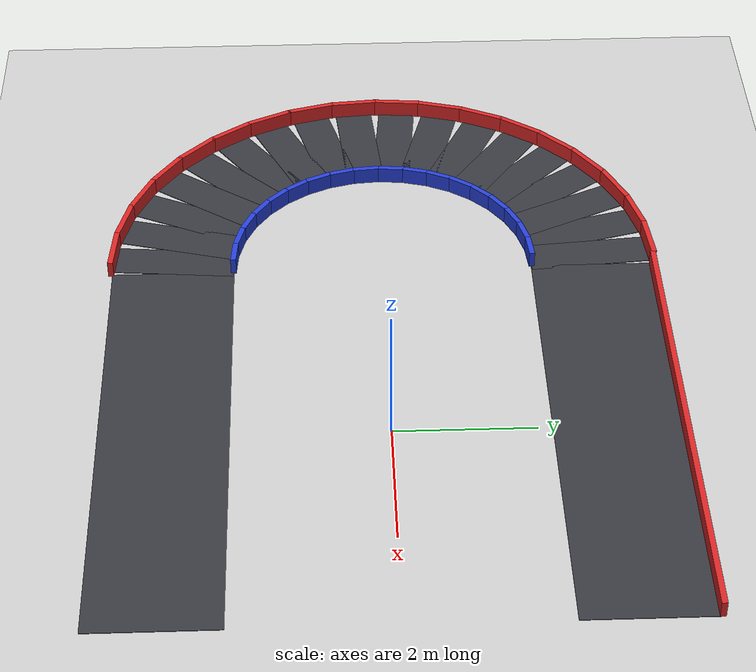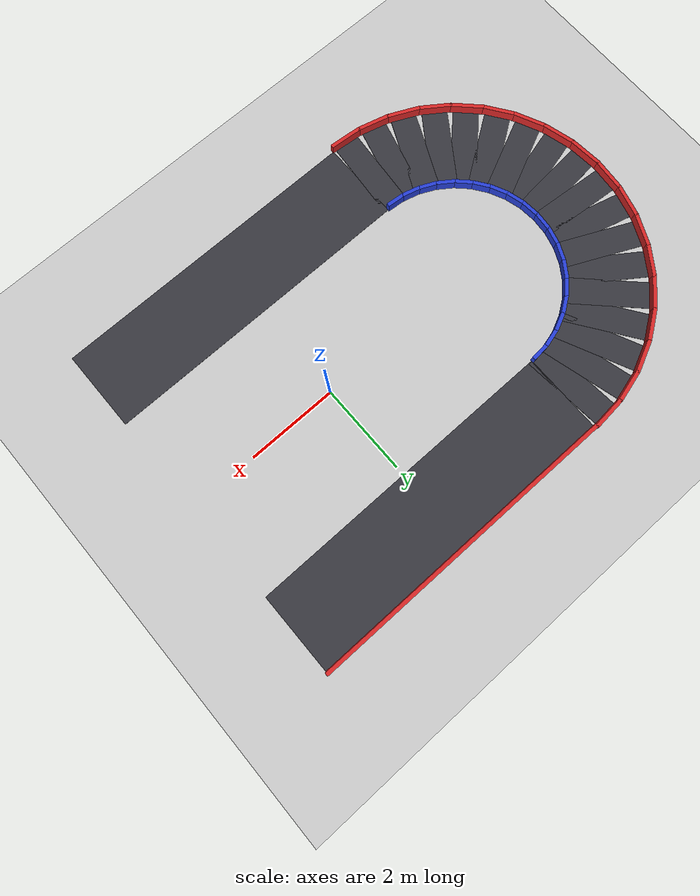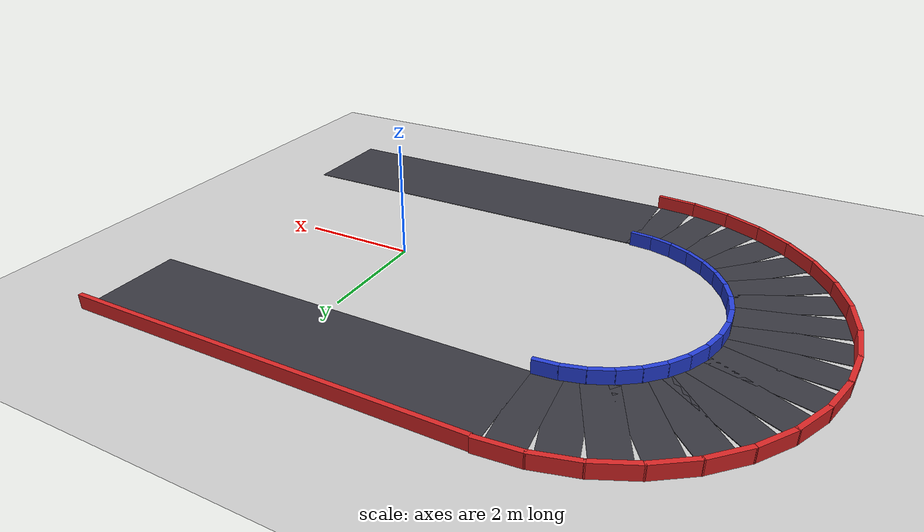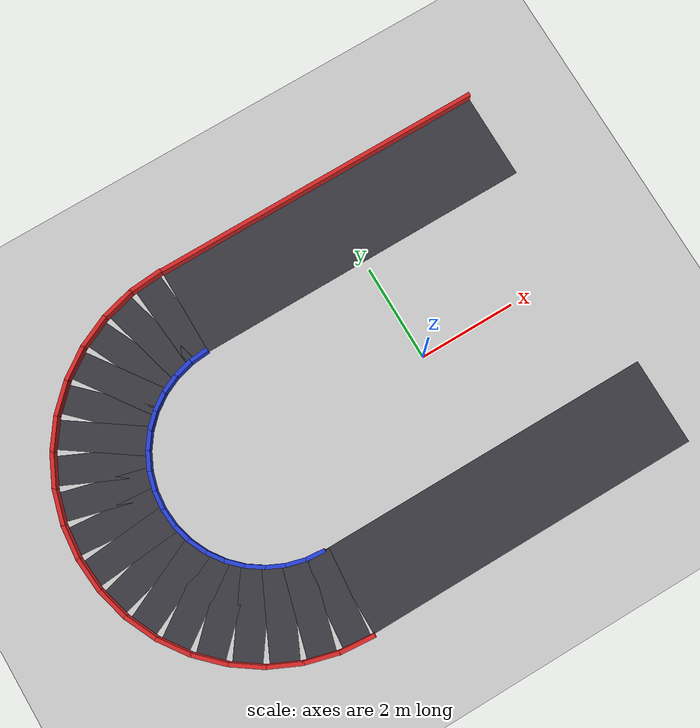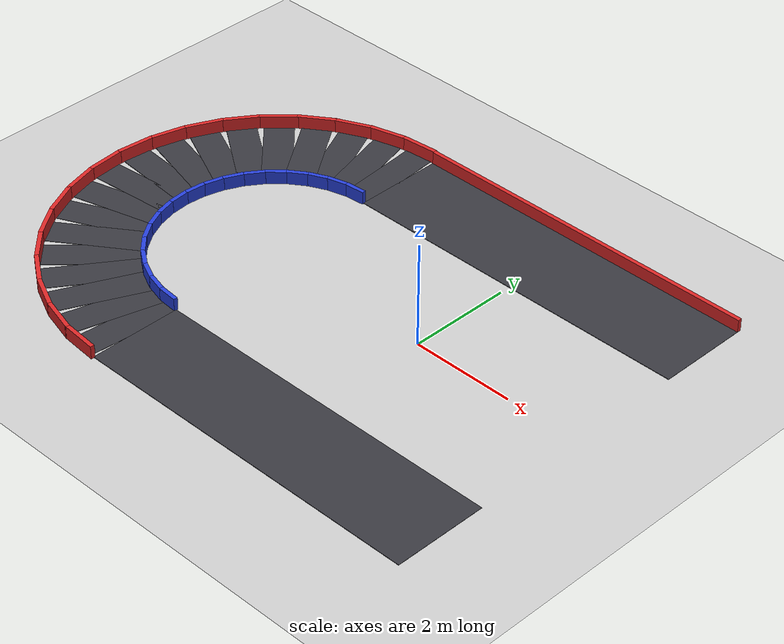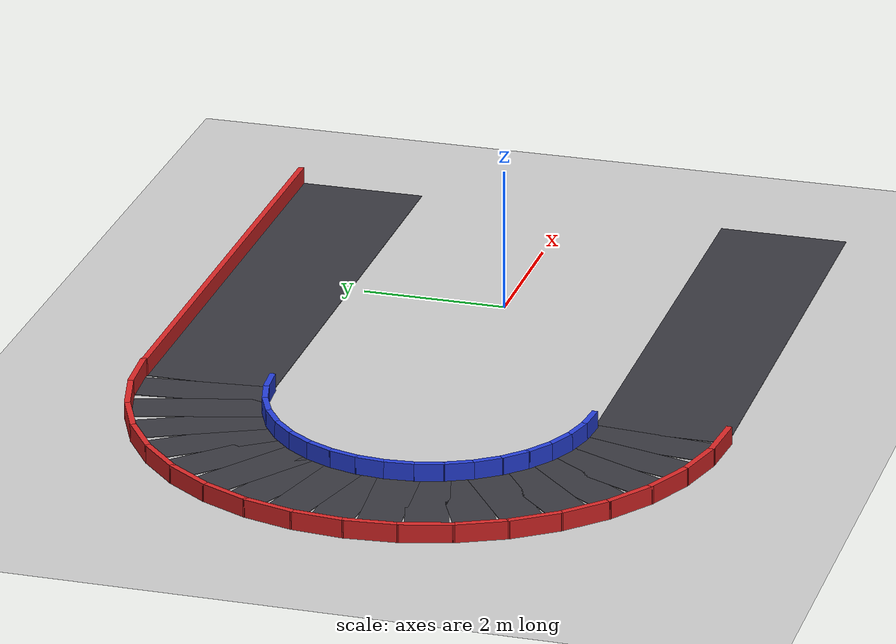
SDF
<sdf version="1.6">
 <world name="mini4wd_single_track">
  <include><uri>model://ground_plane</uri></include>
  <include><uri>model://sun</uri></include>
  <model name="floor_str_n">
   <static>true</static>
   <pose>0 3.100 0.005 0 0 0</pose>
   <link name="l">
    <collision name="c"><geometry><box><size>7.0 1.8 0.01</size></box></geometry></collision>
    <visual name="v">
     <geometry><box><size>7.0 1.8 0.01</size></box></geometry>
     <material><ambient>0.22 0.22 0.25 1</ambient><diffuse>0.22 0.22 0.25 1</diffuse></material>
    </visual>
   </link>
  </model>
  <model name="floor_str_s">
   <static>true</static>
   <pose>0 -3.100 0.005 0 0 0</pose>
   <link name="l">
    <collision name="c"><geometry><box><size>7.0 1.8 0.01</size></box></geometry></collision>
    <visual name="v">
     <geometry><box><size>7.0 1.8 0.01</size></box></geometry>
     <material><ambient>0.22 0.22 0.25 1</ambient><diffuse>0.22 0.22 0.25 1</diffuse></material>
    </visual>
   </link>
  </model>
  <model name="flr_c_w_0">
   <static>true</static>
   <pose>-3.770 3.088 0.005 0 0 3.229</pose>
   <link name="l">
    <collision name="c"><geometry><box><size>0.568 1.8 0.01</size></box></geometry></collision>
    <visual name="v">
     <geometry><box><size>0.568 1.8 0.01</size></box></geometry>
     <material><ambient>0.22 0.22 0.25 1</ambient><diffuse>0.22 0.22 0.25 1</diffuse></material>
    </visual>
   </link>
  </model>
  <model name="flr_c_w_1">
   <static>true</static>
   <pose>-4.302 2.994 0.005 0 0 3.403</pose>
   <link name="l">
    <collision name="c"><geometry><box><size>0.568 1.8 0.01</size></box></geometry></collision>
    <visual name="v">
     <geometry><box><size>0.568 1.8 0.01</size></box></geometry>
     <material><ambient>0.22 0.22 0.25 1</ambient><diffuse>0.22 0.22 0.25 1</diffuse></material>
    </visual>
   </link>
  </model>
  <model name="flr_c_w_2">
   <static>true</static>
   <pose>-4.810 2.810 0.005 0 0 3.578</pose>
   <link name="l">
    <collision name="c"><geometry><box><size>0.568 1.8 0.01</size></box></geometry></collision>
    <visual name="v">
     <geometry><box><size>0.568 1.8 0.01</size></box></geometry>
     <material><ambient>0.22 0.22 0.25 1</ambient><diffuse>0.22 0.22 0.25 1</diffuse></material>
    </visual>
   </link>
  </model>
  <model name="flr_c_w_3">
   <static>true</static>
   <pose>-5.278 2.539 0.005 0 0 3.752</pose>
   <link name="l">
    <collision name="c"><geometry><box><size>0.568 1.8 0.01</size></box></geometry></collision>
    <visual name="v">
     <geometry><box><size>0.568 1.8 0.01</size></box></geometry>
     <material><ambient>0.22 0.22 0.25 1</ambient><diffuse>0.22 0.22 0.25 1</diffuse></material>
    </visual>
   </link>
  </model>
  <model name="flr_c_w_4">
   <static>true</static>
   <pose>-5.692 2.192 0.005 0 0 3.927</pose>
   <link name="l">
    <collision name="c"><geometry><box><size>0.568 1.8 0.01</size></box></geometry></collision>
    <visual name="v">
     <geometry><box><size>0.568 1.8 0.01</size></box></geometry>
     <material><ambient>0.22 0.22 0.25 1</ambient><diffuse>0.22 0.22 0.25 1</diffuse></material>
    </visual>
   </link>
  </model>
  <model name="flr_c_w_5">
   <static>true</static>
   <pose>-6.039 1.778 0.005 0 0 4.102</pose>
   <link name="l">
    <collision name="c"><geometry><box><size>0.568 1.8 0.01</size></box></geometry></collision>
    <visual name="v">
     <geometry><box><size>0.568 1.8 0.01</size></box></geometry>
     <material><ambient>0.22 0.22 0.25 1</ambient><diffuse>0.22 0.22 0.25 1</diffuse></material>
    </visual>
   </link>
  </model>
  <model name="flr_c_w_6">
   <static>true</static>
   <pose>-6.310 1.310 0.005 0 0 4.276</pose>
   <link name="l">
    <collision name="c"><geometry><box><size>0.568 1.8 0.01</size></box></geometry></collision>
    <visual name="v">
     <geometry><box><size>0.568 1.8 0.01</size></box></geometry>
     <material><ambient>0.22 0.22 0.25 1</ambient><diffuse>0.22 0.22 0.25 1</diffuse></material>
    </visual>
   </link>
  </model>
  <model name="flr_c_w_7">
   <static>true</static>
   <pose>-6.494 0.802 0.005 0 0 4.451</pose>
   <link name="l">
    <collision name="c"><geometry><box><size>0.568 1.8 0.01</size></box></geometry></collision>
    <visual name="v">
     <geometry><box><size>0.568 1.8 0.01</size></box></geometry>
     <material><ambient>0.22 0.22 0.25 1</ambient><diffuse>0.22 0.22 0.25 1</diffuse></material>
    </visual>
   </link>
  </model>
  <model name="flr_c_w_8">
   <static>true</static>
   <pose>-6.588 0.270 0.005 0 0 4.625</pose>
   <link name="l">
    <collision name="c"><geometry><box><size>0.568 1.8 0.01</size></box></geometry></collision>
    <visual name="v">
     <geometry><box><size>0.568 1.8 0.01</size></box></geometry>
     <material><ambient>0.22 0.22 0.25 1</ambient><diffuse>0.22 0.22 0.25 1</diffuse></material>
    </visual>
   </link>
  </model>
  <model name="flr_c_w_9">
   <static>true</static>
   <pose>-6.588 -0.270 0.005 0 0 4.800</pose>
   <link name="l">
    <collision name="c"><geometry><box><size>0.568 1.8 0.01</size></box></geometry></collision>
    <visual name="v">
     <geometry><box><size>0.568 1.8 0.01</size></box></geometry>
     <material><ambient>0.22 0.22 0.25 1</ambient><diffuse>0.22 0.22 0.25 1</diffuse></material>
    </visual>
   </link>
  </model>
  <model name="flr_c_w_10">
   <static>true</static>
   <pose>-6.494 -0.802 0.005 0 0 4.974</pose>
   <link name="l">
    <collision name="c"><geometry><box><size>0.568 1.8 0.01</size></box></geometry></collision>
    <visual name="v">
     <geometry><box><size>0.568 1.8 0.01</size></box></geometry>
     <material><ambient>0.22 0.22 0.25 1</ambient><diffuse>0.22 0.22 0.25 1</diffuse></material>
    </visual>
   </link>
  </model>
  <model name="flr_c_w_11">
   <static>true</static>
   <pose>-6.310 -1.310 0.005 0 0 5.149</pose>
   <link name="l">
    <collision name="c"><geometry><box><size>0.568 1.8 0.01</size></box></geometry></collision>
    <visual name="v">
     <geometry><box><size>0.568 1.8 0.01</size></box></geometry>
     <material><ambient>0.22 0.22 0.25 1</ambient><diffuse>0.22 0.22 0.25 1</diffuse></material>
    </visual>
   </link>
  </model>
  <model name="flr_c_w_12">
   <static>true</static>
   <pose>-6.039 -1.778 0.005 0 0 5.323</pose>
   <link name="l">
    <collision name="c"><geometry><box><size>0.568 1.8 0.01</size></box></geometry></collision>
    <visual name="v">
     <geometry><box><size>0.568 1.8 0.01</size></box></geometry>
     <material><ambient>0.22 0.22 0.25 1</ambient><diffuse>0.22 0.22 0.25 1</diffuse></material>
    </visual>
   </link>
  </model>
  <model name="flr_c_w_13">
   <static>true</static>
   <pose>-5.692 -2.192 0.005 0 0 5.498</pose>
   <link name="l">
    <collision name="c"><geometry><box><size>0.568 1.8 0.01</size></box></geometry></collision>
    <visual name="v">
     <geometry><box><size>0.568 1.8 0.01</size></box></geometry>
     <material><ambient>0.22 0.22 0.25 1</ambient><diffuse>0.22 0.22 0.25 1</diffuse></material>
    </visual>
   </link>
  </model>
  <model name="flr_c_w_14">
   <static>true</static>
   <pose>-5.278 -2.539 0.005 0 0 5.672</pose>
   <link name="l">
    <collision name="c"><geometry><box><size>0.568 1.8 0.01</size></box></geometry></collision>
    <visual name="v">
     <geometry><box><size>0.568 1.8 0.01</size></box></geometry>
     <material><ambient>0.22 0.22 0.25 1</ambient><diffuse>0.22 0.22 0.25 1</diffuse></material>
    </visual>
   </link>
  </model>
  <model name="flr_c_w_15">
   <static>true</static>
   <pose>-4.810 -2.810 0.005 0 0 5.847</pose>
   <link name="l">
    <collision name="c"><geometry><box><size>0.568 1.8 0.01</size></box></geometry></collision>
    <visual name="v">
     <geometry><box><size>0.568 1.8 0.01</size></box></geometry>
     <material><ambient>0.22 0.22 0.25 1</ambient><diffuse>0.22 0.22 0.25 1</diffuse></material>
    </visual>
   </link>
  </model>
  <model name="flr_c_w_16">
   <static>true</static>
   <pose>-4.302 -2.994 0.005 0 0 6.021</pose>
   <link name="l">
    <collision name="c"><geometry><box><size>0.568 1.8 0.01</size></box></geometry></collision>
    <visual name="v">
     <geometry><box><size>0.568 1.8 0.01</size></box></geometry>
     <material><ambient>0.22 0.22 0.25 1</ambient><diffuse>0.22 0.22 0.25 1</diffuse></material>
    </visual>
   </link>
  </model>
  <model name="flr_c_w_17">
   <static>true</static>
   <pose>-3.770 -3.088 0.005 0 0 6.196</pose>
   <link name="l">
    <collision name="c"><geometry><box><size>0.568 1.8 0.01</size></box></geometry></collision>
    <visual name="v">
     <geometry><box><size>0.568 1.8 0.01</size></box></geometry>
     <material><ambient>0.22 0.22 0.25 1</ambient><diffuse>0.22 0.22 0.25 1</diffuse></material>
    </visual>
   </link>
  </model>
  <model name="w_out_n">
   <static>true</static>
   <pose>0 4.000 0.125 0 0 0</pose>
   <link name="l">
    <collision name="c"><geometry><box><size>7.0 0.08 0.25</size></box></geometry></collision>
    <visual name="v">
     <geometry><box><size>7.0 0.08 0.25</size></box></geometry>
     <material><ambient>0.85 0.15 0.15 1</ambient><diffuse>0.85 0.15 0.15 1</diffuse></material>
    </visual>
   </link>
  </model>
  <model name="w_crv_out_w_0">
   <static>true</static>
   <pose>-3.849 3.985 0.125 0 0 3.229</pose>
   <link name="l">
    <collision name="c"><geometry><box><size>0.733 0.08 0.25</size></box></geometry></collision>
    <visual name="v">
     <geometry><box><size>0.733 0.08 0.25</size></box></geometry>
     <material><ambient>0.85 0.15 0.15 1</ambient><diffuse>0.85 0.15 0.15 1</diffuse></material>
    </visual>
   </link>
  </model>
  <model name="w_crv_in_w_0">
   <static>true</static>
   <pose>-3.692 2.192 0.125 0 0 3.229</pose>
   <link name="l">
    <collision name="c"><geometry><box><size>0.403 0.08 0.25</size></box></geometry></collision>
    <visual name="v">
     <geometry><box><size>0.403 0.08 0.25</size></box></geometry>
     <material><ambient>0.15 0.25 0.85 1</ambient><diffuse>0.15 0.25 0.85 1</diffuse></material>
    </visual>
   </link>
  </model>
  <model name="w_crv_out_w_1">
   <static>true</static>
   <pose>-4.535 3.864 0.125 0 0 3.403</pose>
   <link name="l">
    <collision name="c"><geometry><box><size>0.733 0.08 0.25</size></box></geometry></collision>
    <visual name="v">
     <geometry><box><size>0.733 0.08 0.25</size></box></geometry>
     <material><ambient>0.85 0.15 0.15 1</ambient><diffuse>0.85 0.15 0.15 1</diffuse></material>
    </visual>
   </link>
  </model>
  <model name="w_crv_in_w_1">
   <static>true</static>
   <pose>-4.069 2.125 0.125 0 0 3.403</pose>
   <link name="l">
    <collision name="c"><geometry><box><size>0.403 0.08 0.25</size></box></geometry></collision>
    <visual name="v">
     <geometry><box><size>0.403 0.08 0.25</size></box></geometry>
     <material><ambient>0.15 0.25 0.85 1</ambient><diffuse>0.15 0.25 0.85 1</diffuse></material>
    </visual>
   </link>
  </model>
  <model name="w_crv_out_w_2">
   <static>true</static>
   <pose>-5.190 3.625 0.125 0 0 3.578</pose>
   <link name="l">
    <collision name="c"><geometry><box><size>0.733 0.08 0.25</size></box></geometry></collision>
    <visual name="v">
     <geometry><box><size>0.733 0.08 0.25</size></box></geometry>
     <material><ambient>0.85 0.15 0.15 1</ambient><diffuse>0.85 0.15 0.15 1</diffuse></material>
    </visual>
   </link>
  </model>
  <model name="w_crv_in_w_2">
   <static>true</static>
   <pose>-4.430 1.994 0.125 0 0 3.578</pose>
   <link name="l">
    <collision name="c"><geometry><box><size>0.403 0.08 0.25</size></box></geometry></collision>
    <visual name="v">
     <geometry><box><size>0.403 0.08 0.25</size></box></geometry>
     <material><ambient>0.15 0.25 0.85 1</ambient><diffuse>0.15 0.25 0.85 1</diffuse></material>
    </visual>
   </link>
  </model>
  <model name="w_crv_out_w_3">
   <static>true</static>
   <pose>-5.794 3.277 0.125 0 0 3.752</pose>
   <link name="l">
    <collision name="c"><geometry><box><size>0.733 0.08 0.25</size></box></geometry></collision>
    <visual name="v">
     <geometry><box><size>0.733 0.08 0.25</size></box></geometry>
     <material><ambient>0.85 0.15 0.15 1</ambient><diffuse>0.85 0.15 0.15 1</diffuse></material>
    </visual>
   </link>
  </model>
  <model name="w_crv_in_w_3">
   <static>true</static>
   <pose>-4.762 1.802 0.125 0 0 3.752</pose>
   <link name="l">
    <collision name="c"><geometry><box><size>0.403 0.08 0.25</size></box></geometry></collision>
    <visual name="v">
     <geometry><box><size>0.403 0.08 0.25</size></box></geometry>
     <material><ambient>0.15 0.25 0.85 1</ambient><diffuse>0.15 0.25 0.85 1</diffuse></material>
    </visual>
   </link>
  </model>
  <model name="w_crv_out_w_4">
   <static>true</static>
   <pose>-6.328 2.828 0.125 0 0 3.927</pose>
   <link name="l">
    <collision name="c"><geometry><box><size>0.733 0.08 0.25</size></box></geometry></collision>
    <visual name="v">
     <geometry><box><size>0.733 0.08 0.25</size></box></geometry>
     <material><ambient>0.85 0.15 0.15 1</ambient><diffuse>0.85 0.15 0.15 1</diffuse></material>
    </visual>
   </link>
  </model>
  <model name="w_crv_in_w_4">
   <static>true</static>
   <pose>-5.056 1.556 0.125 0 0 3.927</pose>
   <link name="l">
    <collision name="c"><geometry><box><size>0.403 0.08 0.25</size></box></geometry></collision>
    <visual name="v">
     <geometry><box><size>0.403 0.08 0.25</size></box></geometry>
     <material><ambient>0.15 0.25 0.85 1</ambient><diffuse>0.15 0.25 0.85 1</diffuse></material>
    </visual>
   </link>
  </model>
  <model name="w_crv_out_w_5">
   <static>true</static>
   <pose>-6.777 2.294 0.125 0 0 4.102</pose>
   <link name="l">
    <collision name="c"><geometry><box><size>0.733 0.08 0.25</size></box></geometry></collision>
    <visual name="v">
     <geometry><box><size>0.733 0.08 0.25</size></box></geometry>
     <material><ambient>0.85 0.15 0.15 1</ambient><diffuse>0.85 0.15 0.15 1</diffuse></material>
    </visual>
   </link>
  </model>
  <model name="w_crv_in_w_5">
   <static>true</static>
   <pose>-5.302 1.262 0.125 0 0 4.102</pose>
   <link name="l">
    <collision name="c"><geometry><box><size>0.403 0.08 0.25</size></box></geometry></collision>
    <visual name="v">
     <geometry><box><size>0.403 0.08 0.25</size></box></geometry>
     <material><ambient>0.15 0.25 0.85 1</ambient><diffuse>0.15 0.25 0.85 1</diffuse></material>
    </visual>
   </link>
  </model>
  <model name="w_crv_out_w_6">
   <static>true</static>
   <pose>-7.125 1.690 0.125 0 0 4.276</pose>
   <link name="l">
    <collision name="c"><geometry><box><size>0.733 0.08 0.25</size></box></geometry></collision>
    <visual name="v">
     <geometry><box><size>0.733 0.08 0.25</size></box></geometry>
     <material><ambient>0.85 0.15 0.15 1</ambient><diffuse>0.85 0.15 0.15 1</diffuse></material>
    </visual>
   </link>
  </model>
  <model name="w_crv_in_w_6">
   <static>true</static>
   <pose>-5.494 0.930 0.125 0 0 4.276</pose>
   <link name="l">
    <collision name="c"><geometry><box><size>0.403 0.08 0.25</size></box></geometry></collision>
    <visual name="v">
     <geometry><box><size>0.403 0.08 0.25</size></box></geometry>
     <material><ambient>0.15 0.25 0.85 1</ambient><diffuse>0.15 0.25 0.85 1</diffuse></material>
    </visual>
   </link>
  </model>
  <model name="w_crv_out_w_7">
   <static>true</static>
   <pose>-7.364 1.035 0.125 0 0 4.451</pose>
   <link name="l">
    <collision name="c"><geometry><box><size>0.733 0.08 0.25</size></box></geometry></collision>
    <visual name="v">
     <geometry><box><size>0.733 0.08 0.25</size></box></geometry>
     <material><ambient>0.85 0.15 0.15 1</ambient><diffuse>0.85 0.15 0.15 1</diffuse></material>
    </visual>
   </link>
  </model>
  <model name="w_crv_in_w_7">
   <static>true</static>
   <pose>-5.625 0.569 0.125 0 0 4.451</pose>
   <link name="l">
    <collision name="c"><geometry><box><size>0.403 0.08 0.25</size></box></geometry></collision>
    <visual name="v">
     <geometry><box><size>0.403 0.08 0.25</size></box></geometry>
     <material><ambient>0.15 0.25 0.85 1</ambient><diffuse>0.15 0.25 0.85 1</diffuse></material>
    </visual>
   </link>
  </model>
  <model name="w_crv_out_w_8">
   <static>true</static>
   <pose>-7.485 0.349 0.125 0 0 4.625</pose>
   <link name="l">
    <collision name="c"><geometry><box><size>0.733 0.08 0.25</size></box></geometry></collision>
    <visual name="v">
     <geometry><box><size>0.733 0.08 0.25</size></box></geometry>
     <material><ambient>0.85 0.15 0.15 1</ambient><diffuse>0.85 0.15 0.15 1</diffuse></material>
    </visual>
   </link>
  </model>
  <model name="w_crv_in_w_8">
   <static>true</static>
   <pose>-5.692 0.192 0.125 0 0 4.625</pose>
   <link name="l">
    <collision name="c"><geometry><box><size>0.403 0.08 0.25</size></box></geometry></collision>
    <visual name="v">
     <geometry><box><size>0.403 0.08 0.25</size></box></geometry>
     <material><ambient>0.15 0.25 0.85 1</ambient><diffuse>0.15 0.25 0.85 1</diffuse></material>
    </visual>
   </link>
  </model>
  <model name="w_crv_out_w_9">
   <static>true</static>
   <pose>-7.485 -0.349 0.125 0 0 4.800</pose>
   <link name="l">
    <collision name="c"><geometry><box><size>0.733 0.08 0.25</size></box></geometry></collision>
    <visual name="v">
     <geometry><box><size>0.733 0.08 0.25</size></box></geometry>
     <material><ambient>0.85 0.15 0.15 1</ambient><diffuse>0.85 0.15 0.15 1</diffuse></material>
    </visual>
   </link>
  </model>
  <model name="w_crv_in_w_9">
   <static>true</static>
   <pose>-5.692 -0.192 0.125 0 0 4.800</pose>
   <link name="l">
    <collision name="c"><geometry><box><size>0.403 0.08 0.25</size></box></geometry></collision>
    <visual name="v">
     <geometry><box><size>0.403 0.08 0.25</size></box></geometry>
     <material><ambient>0.15 0.25 0.85 1</ambient><diffuse>0.15 0.25 0.85 1</diffuse></material>
    </visual>
   </link>
  </model>
  <model name="w_crv_out_w_10">
   <static>true</static>
   <pose>-7.364 -1.035 0.125 0 0 4.974</pose>
   <link name="l">
    <collision name="c"><geometry><box><size>0.733 0.08 0.25</size></box></geometry></collision>
    <visual name="v">
     <geometry><box><size>0.733 0.08 0.25</size></box></geometry>
     <material><ambient>0.85 0.15 0.15 1</ambient><diffuse>0.85 0.15 0.15 1</diffuse></material>
    </visual>
   </link>
  </model>
  <model name="w_crv_in_w_10">
   <static>true</static>
   <pose>-5.625 -0.569 0.125 0 0 4.974</pose>
   <link name="l">
    <collision name="c"><geometry><box><size>0.403 0.08 0.25</size></box></geometry></collision>
    <visual name="v">
     <geometry><box><size>0.403 0.08 0.25</size></box></geometry>
     <material><ambient>0.15 0.25 0.85 1</ambient><diffuse>0.15 0.25 0.85 1</diffuse></material>
    </visual>
   </link>
  </model>
  <model name="w_crv_out_w_11">
   <static>true</static>
   <pose>-7.125 -1.690 0.125 0 0 5.149</pose>
   <link name="l">
    <collision name="c"><geometry><box><size>0.733 0.08 0.25</size></box></geometry></collision>
    <visual name="v">
     <geometry><box><size>0.733 0.08 0.25</size></box></geometry>
     <material><ambient>0.85 0.15 0.15 1</ambient><diffuse>0.85 0.15 0.15 1</diffuse></material>
    </visual>
   </link>
  </model>
  <model name="w_crv_in_w_11">
   <static>true</static>
   <pose>-5.494 -0.930 0.125 0 0 5.149</pose>
   <link name="l">
    <collision name="c"><geometry><box><size>0.403 0.08 0.25</size></box></geometry></collision>
    <visual name="v">
     <geometry><box><size>0.403 0.08 0.25</size></box></geometry>
     <material><ambient>0.15 0.25 0.85 1</ambient><diffuse>0.15 0.25 0.85 1</diffuse></material>
    </visual>
   </link>
  </model>
  <model name="w_crv_out_w_12">
   <static>true</static>
   <pose>-6.777 -2.294 0.125 0 0 5.323</pose>
   <link name="l">
    <collision name="c"><geometry><box><size>0.733 0.08 0.25</size></box></geometry></collision>
    <visual name="v">
     <geometry><box><size>0.733 0.08 0.25</size></box></geometry>
     <material><ambient>0.85 0.15 0.15 1</ambient><diffuse>0.85 0.15 0.15 1</diffuse></material>
    </visual>
   </link>
  </model>
  <model name="w_crv_in_w_12">
   <static>true</static>
   <pose>-5.302 -1.262 0.125 0 0 5.323</pose>
   <link name="l">
    <collision name="c"><geometry><box><size>0.403 0.08 0.25</size></box></geometry></collision>
    <visual name="v">
     <geometry><box><size>0.403 0.08 0.25</size></box></geometry>
     <material><ambient>0.15 0.25 0.85 1</ambient><diffuse>0.15 0.25 0.85 1</diffuse></material>
    </visual>
   </link>
  </model>
  <model name="w_crv_out_w_13">
   <static>true</static>
   <pose>-6.328 -2.828 0.125 0 0 5.498</pose>
   <link name="l">
    <collision name="c"><geometry><box><size>0.733 0.08 0.25</size></box></geometry></collision>
    <visual name="v">
     <geometry><box><size>0.733 0.08 0.25</size></box></geometry>
     <material><ambient>0.85 0.15 0.15 1</ambient><diffuse>0.85 0.15 0.15 1</diffuse></material>
    </visual>
   </link>
  </model>
  <model name="w_crv_in_w_13">
   <static>true</static>
   <pose>-5.056 -1.556 0.125 0 0 5.498</pose>
   <link name="l">
    <collision name="c"><geometry><box><size>0.403 0.08 0.25</size></box></geometry></collision>
    <visual name="v">
     <geometry><box><size>0.403 0.08 0.25</size></box></geometry>
     <material><ambient>0.15 0.25 0.85 1</ambient><diffuse>0.15 0.25 0.85 1</diffuse></material>
    </visual>
   </link>
  </model>
  <model name="w_crv_out_w_14">
   <static>true</static>
   <pose>-5.794 -3.277 0.125 0 0 5.672</pose>
   <link name="l">
    <collision name="c"><geometry><box><size>0.733 0.08 0.25</size></box></geometry></collision>
    <visual name="v">
     <geometry><box><size>0.733 0.08 0.25</size></box></geometry>
     <material><ambient>0.85 0.15 0.15 1</ambient><diffuse>0.85 0.15 0.15 1</diffuse></material>
    </visual>
   </link>
  </model>
  <model name="w_crv_in_w_14">
   <static>true</static>
   <pose>-4.762 -1.802 0.125 0 0 5.672</pose>
   <link name="l">
    <collision name="c"><geometry><box><size>0.403 0.08 0.25</size></box></geometry></collision>
    <visual name="v">
     <geometry><box><size>0.403 0.08 0.25</size></box></geometry>
     <material><ambient>0.15 0.25 0.85 1</ambient><diffuse>0.15 0.25 0.85 1</diffuse></material>
    </visual>
   </link>
  </model>
  <model name="w_crv_out_w_15">
   <static>true</static>
   <pose>-5.190 -3.625 0.125 0 0 5.847</pose>
   <link name="l">
    <collision name="c"><geometry><box><size>0.733 0.08 0.25</size></box></geometry></collision>
    <visual name="v">
     <geometry><box><size>0.733 0.08 0.25</size></box></geometry>
     <material><ambient>0.85 0.15 0.15 1</ambient><diffuse>0.85 0.15 0.15 1</diffuse></material>
    </visual>
   </link>
  </model>
  <model name="w_crv_in_w_15">
   <static>true</static>
   <pose>-4.430 -1.994 0.125 0 0 5.847</pose>
   <link name="l">
    <collision name="c"><geometry><box><size>0.403 0.08 0.25</size></box></geometry></collision>
    <visual name="v">
     <geometry><box><size>0.403 0.08 0.25</size></box></geometry>
     <material><ambient>0.15 0.25 0.85 1</ambient><diffuse>0.15 0.25 0.85 1</diffuse></material>
    </visual>
   </link>
  </model>
  <model name="w_crv_out_w_16">
   <static>true</static>
   <pose>-4.535 -3.864 0.125 0 0 6.021</pose>
   <link name="l">
    <collision name="c"><geometry><box><size>0.733 0.08 0.25</size></box></geometry></collision>
    <visual name="v">
     <geometry><box><size>0.733 0.08 0.25</size></box></geometry>
     <material><ambient>0.85 0.15 0.15 1</ambient><diffuse>0.85 0.15 0.15 1</diffuse></material>
    </visual>
   </link>
  </model>
  <model name="w_crv_in_w_16">
   <static>true</static>
   <pose>-4.069 -2.125 0.125 0 0 6.021</pose>
   <link name="l">
    <collision name="c"><geometry><box><size>0.403 0.08 0.25</size></box></geometry></collision>
    <visual name="v">
     <geometry><box><size>0.403 0.08 0.25</size></box></geometry>
     <material><ambient>0.15 0.25 0.85 1</ambient><diffuse>0.15 0.25 0.85 1</diffuse></material>
    </visual>
   </link>
  </model>
  <model name="w_crv_out_w_17">
   <static>true</static>
   <pose>-3.849 -3.985 0.125 0 0 6.196</pose>
   <link name="l">
    <collision name="c"><geometry><box><size>0.733 0.08 0.25</size></box></geometry></collision>
    <visual name="v">
     <geometry><box><size>0.733 0.08 0.25</size></box></geometry>
     <material><ambient>0.85 0.15 0.15 1</ambient><diffuse>0.85 0.15 0.15 1</diffuse></material>
    </visual>
   </link>
  </model>
  <model name="w_crv_in_w_17">
   <static>true</static>
   <pose>-3.692 -2.192 0.125 0 0 6.196</pose>
   <link name="l">
    <collision name="c"><geometry><box><size>0.403 0.08 0.25</size></box></geometry></collision>
    <visual name="v">
     <geometry><box><size>0.403 0.08 0.25</size></box></geometry>
     <material><ambient>0.15 0.25 0.85 1</ambient><diffuse>0.15 0.25 0.85 1</diffuse></material>
    </visual>
   </link>
  </model>
 </world>
</sdf>
